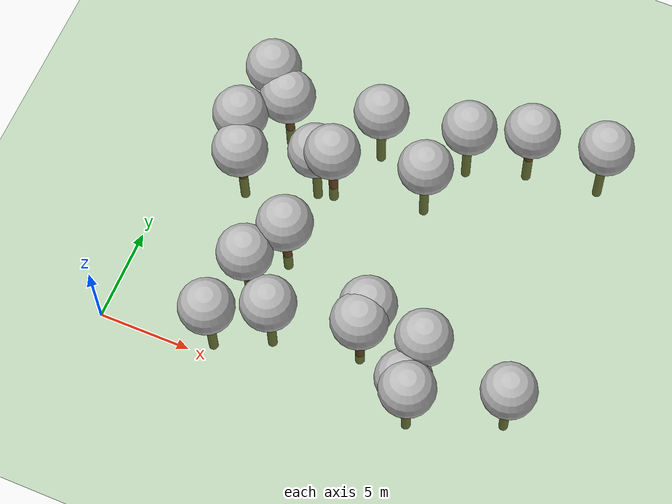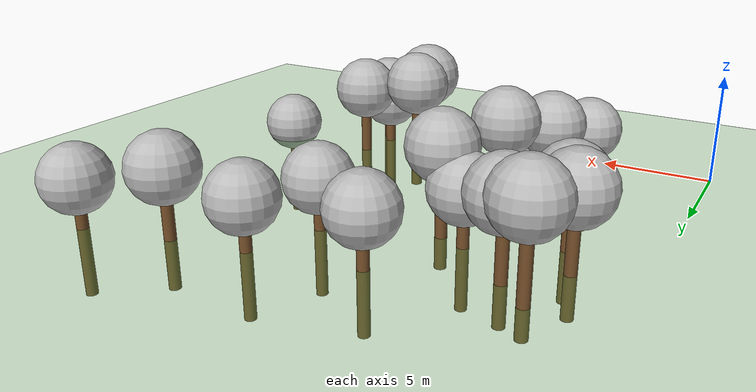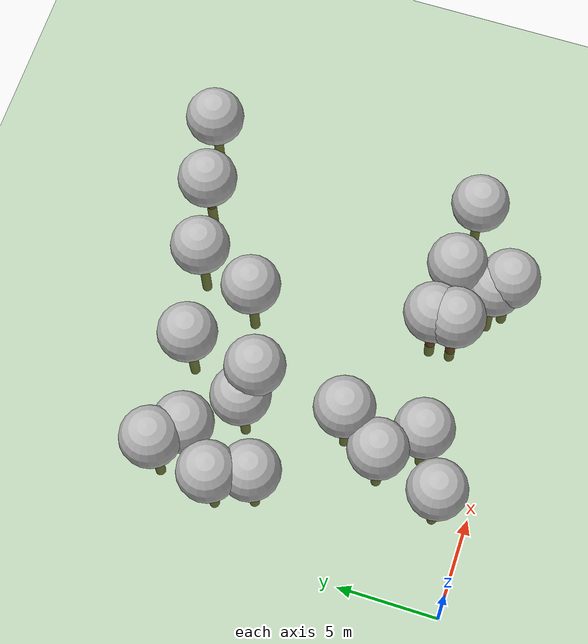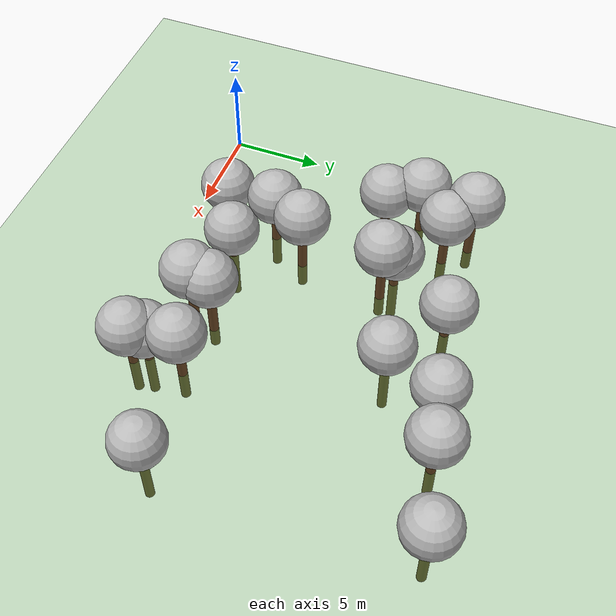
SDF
<sdf version="1.7">
 <world name="default">
  <model name="tree_simple495">
   <static>1</static>
   <link name="link">
    <pose>0 0 0.1 0 -0 0</pose>
    <collision name="collision_trunk">
     <pose>0 0 2 0 -0 0</pose>
     <geometry><cylinder><radius>0.25</radius><length>4</length></cylinder></geometry>
    </collision>
    <collision name="collision_treetop">
     <pose>0 0 5.2 0 -0 0</pose>
     <geometry><sphere><radius>1.5</radius></sphere></geometry>
    </collision>
    <visual name="trunk">
     <pose>0 0 2 0 -0 0</pose>
     <geometry><cylinder><radius>0.25</radius><length>4</length></cylinder></geometry>
     <material>
      <script>
       <uri>model://tree_simple/scripts</uri>
       <uri>model://tree_simple/materials/textures</uri>
       <name>TreeSimple/Trunk</name>
      </script>
     </material>
    </visual>
    <visual name="treetop">
     <pose>0 0 5.2 0 -0 0</pose>
     <geometry><sphere><radius>1.5</radius></sphere></geometry>
     <material>
      <script>
       <uri>model://tree_simple/scripts</uri>
       <uri>model://tree_simple/materials/textures</uri>
       <name>TreeSimple/Treetop</name>
      </script>
     </material>
    </visual>
   </link>
   <pose>13.2663 3.23501 -1.11258 0 -0 0</pose>
  </model>
  <model name="tree_simple486">
   <static>1</static>
   <link name="link">
    <pose>0 0 0.1 0 -0 0</pose>
    <collision name="collision_trunk">
     <pose>0 0 2 0 -0 0</pose>
     <geometry><cylinder><radius>0.25</radius><length>4</length></cylinder></geometry>
    </collision>
    <collision name="collision_treetop">
     <pose>0 0 5.2 0 -0 0</pose>
     <geometry><sphere><radius>1.5</radius></sphere></geometry>
    </collision>
    <visual name="trunk">
     <pose>0 0 2 0 -0 0</pose>
     <geometry><cylinder><radius>0.25</radius><length>4</length></cylinder></geometry>
     <material>
      <script>
       <uri>model://tree_simple/scripts</uri>
       <uri>model://tree_simple/materials/textures</uri>
       <name>TreeSimple/Trunk</name>
      </script>
     </material>
    </visual>
    <visual name="treetop">
     <pose>0 0 5.2 0 -0 0</pose>
     <geometry><sphere><radius>1.5</radius></sphere></geometry>
     <material>
      <script>
       <uri>model://tree_simple/scripts</uri>
       <uri>model://tree_simple/materials/textures</uri>
       <name>TreeSimple/Treetop</name>
      </script>
     </material>
    </visual>
   </link>
   <pose>8.18282 11.6524 -1.49404 0 -0 0</pose>
  </model>
  <model name="tree_simple431">
   <static>1</static>
   <link name="link">
    <pose>0 0 0.1 0 -0 0</pose>
    <collision name="collision_trunk">
     <pose>0 0 2 0 -0 0</pose>
     <geometry><cylinder><radius>0.25</radius><length>4</length></cylinder></geometry>
    </collision>
    <collision name="collision_treetop">
     <pose>0 0 5.2 0 -0 0</pose>
     <geometry><sphere><radius>1.5</radius></sphere></geometry>
    </collision>
    <visual name="trunk">
     <pose>0 0 2 0 -0 0</pose>
     <geometry><cylinder><radius>0.25</radius><length>4</length></cylinder></geometry>
     <material>
      <script>
       <uri>model://tree_simple/scripts</uri>
       <uri>model://tree_simple/materials/textures</uri>
       <name>TreeSimple/Trunk</name>
      </script>
     </material>
    </visual>
    <visual name="treetop">
     <pose>0 0 5.2 0 -0 0</pose>
     <geometry><sphere><radius>1.5</radius></sphere></geometry>
     <material>
      <script>
       <uri>model://tree_simple/scripts</uri>
       <uri>model://tree_simple/materials/textures</uri>
       <name>TreeSimple/Treetop</name>
      </script>
     </material>
    </visual>
   </link>
   <pose>21.2092 3.93897 -4.55692 0 -0 0</pose>
  </model>
  <model name="tree_simple421">
   <static>1</static>
   <link name="link">
    <pose>0 0 0.1 0 -0 0</pose>
    <collision name="collision_trunk">
     <pose>0 0 2 0 -0 0</pose>
     <geometry><cylinder><radius>0.25</radius><length>4</length></cylinder></geometry>
    </collision>
    <collision name="collision_treetop">
     <pose>0 0 5.2 0 -0 0</pose>
     <geometry><sphere><radius>1.5</radius></sphere></geometry>
    </collision>
    <visual name="trunk">
     <pose>0 0 2 0 -0 0</pose>
     <geometry><cylinder><radius>0.25</radius><length>4</length></cylinder></geometry>
     <material>
      <script>
       <uri>model://tree_simple/scripts</uri>
       <uri>model://tree_simple/materials/textures</uri>
       <name>TreeSimple/Trunk</name>
      </script>
     </material>
    </visual>
    <visual name="treetop">
     <pose>0 0 5.2 0 -0 0</pose>
     <geometry><sphere><radius>1.5</radius></sphere></geometry>
     <material>
      <script>
       <uri>model://tree_simple/scripts</uri>
       <uri>model://tree_simple/materials/textures</uri>
       <name>TreeSimple/Treetop</name>
      </script>
     </material>
    </visual>
   </link>
   <pose>7.02493 12.056 -2.87847 0 -0 0</pose>
  </model>
  <model name="tree_simple350">
   <static>1</static>
   <link name="link">
    <pose>0 0 0.1 0 -0 0</pose>
    <collision name="collision_trunk">
     <pose>0 0 2 0 -0 0</pose>
     <geometry><cylinder><radius>0.25</radius><length>4</length></cylinder></geometry>
    </collision>
    <collision name="collision_treetop">
     <pose>0 0 5.2 0 -0 0</pose>
     <geometry><sphere><radius>1.5</radius></sphere></geometry>
    </collision>
    <visual name="trunk">
     <pose>0 0 2 0 -0 0</pose>
     <geometry><cylinder><radius>0.25</radius><length>4</length></cylinder></geometry>
     <material>
      <script>
       <uri>model://tree_simple/scripts</uri>
       <uri>model://tree_simple/materials/textures</uri>
       <name>TreeSimple/Trunk</name>
      </script>
     </material>
    </visual>
    <visual name="treetop">
     <pose>0 0 5.2 0 -0 0</pose>
     <geometry><sphere><radius>1.5</radius></sphere></geometry>
     <material>
      <script>
       <uri>model://tree_simple/scripts</uri>
       <uri>model://tree_simple/materials/textures</uri>
       <name>TreeSimple/Treetop</name>
      </script>
     </material>
    </visual>
   </link>
   <pose>5.40258 1.73801 -3.09552 0 -0 0</pose>
  </model>
  <model name="tree_simple346">
   <static>1</static>
   <link name="link">
    <pose>0 0 0.1 0 -0 0</pose>
    <collision name="collision_trunk">
     <pose>0 0 2 0 -0 0</pose>
     <geometry><cylinder><radius>0.25</radius><length>4</length></cylinder></geometry>
    </collision>
    <collision name="collision_treetop">
     <pose>0 0 5.2 0 -0 0</pose>
     <geometry><sphere><radius>1.5</radius></sphere></geometry>
    </collision>
    <visual name="trunk">
     <pose>0 0 2 0 -0 0</pose>
     <geometry><cylinder><radius>0.25</radius><length>4</length></cylinder></geometry>
     <material>
      <script>
       <uri>model://tree_simple/scripts</uri>
       <uri>model://tree_simple/materials/textures</uri>
       <name>TreeSimple/Trunk</name>
      </script>
     </material>
    </visual>
    <visual name="treetop">
     <pose>0 0 5.2 0 -0 0</pose>
     <geometry><sphere><radius>1.5</radius></sphere></geometry>
     <material>
      <script>
       <uri>model://tree_simple/scripts</uri>
       <uri>model://tree_simple/materials/textures</uri>
       <name>TreeSimple/Treetop</name>
      </script>
     </material>
    </visual>
   </link>
   <pose>6.18559 4.9134 -2.15366 0 -0 0</pose>
  </model>
  <model name="tree_simple324">
   <static>1</static>
   <link name="link">
    <pose>0 0 0.1 0 -0 0</pose>
    <collision name="collision_trunk">
     <pose>0 0 2 0 -0 0</pose>
     <geometry><cylinder><radius>0.25</radius><length>4</length></cylinder></geometry>
    </collision>
    <collision name="collision_treetop">
     <pose>0 0 5.2 0 -0 0</pose>
     <geometry><sphere><radius>1.5</radius></sphere></geometry>
    </collision>
    <visual name="trunk">
     <pose>0 0 2 0 -0 0</pose>
     <geometry><cylinder><radius>0.25</radius><length>4</length></cylinder></geometry>
     <material>
      <script>
       <uri>model://tree_simple/scripts</uri>
       <uri>model://tree_simple/materials/textures</uri>
       <name>TreeSimple/Trunk</name>
      </script>
     </material>
    </visual>
    <visual name="treetop">
     <pose>0 0 5.2 0 -0 0</pose>
     <geometry><sphere><radius>1.5</radius></sphere></geometry>
     <material>
      <script>
       <uri>model://tree_simple/scripts</uri>
       <uri>model://tree_simple/materials/textures</uri>
       <name>TreeSimple/Treetop</name>
      </script>
     </material>
    </visual>
   </link>
   <pose>2.67974 12.1657 -1.97281 0 -0 0</pose>
  </model>
  <model name="tree_simple304">
   <static>1</static>
   <link name="link">
    <pose>0 0 0.1 0 -0 0</pose>
    <collision name="collision_trunk">
     <pose>0 0 2 0 -0 0</pose>
     <geometry><cylinder><radius>0.25</radius><length>4</length></cylinder></geometry>
    </collision>
    <collision name="collision_treetop">
     <pose>0 0 5.2 0 -0 0</pose>
     <geometry><sphere><radius>1.5</radius></sphere></geometry>
    </collision>
    <visual name="trunk">
     <pose>0 0 2 0 -0 0</pose>
     <geometry><cylinder><radius>0.25</radius><length>4</length></cylinder></geometry>
     <material>
      <script>
       <uri>model://tree_simple/scripts</uri>
       <uri>model://tree_simple/materials/textures</uri>
       <name>TreeSimple/Trunk</name>
      </script>
     </material>
    </visual>
    <visual name="treetop">
     <pose>0 0 5.2 0 -0 0</pose>
     <geometry><sphere><radius>1.5</radius></sphere></geometry>
     <material>
      <script>
       <uri>model://tree_simple/scripts</uri>
       <uri>model://tree_simple/materials/textures</uri>
       <name>TreeSimple/Treetop</name>
      </script>
     </material>
    </visual>
   </link>
   <pose>12.7492 13.4737 -3.09934 0 -0 0</pose>
  </model>
  <model name="tree_simple269">
   <static>1</static>
   <link name="link">
    <pose>0 0 0.1 0 -0 0</pose>
    <collision name="collision_trunk">
     <pose>0 0 2 0 -0 0</pose>
     <geometry><cylinder><radius>0.25</radius><length>4</length></cylinder></geometry>
    </collision>
    <collision name="collision_treetop">
     <pose>0 0 5.2 0 -0 0</pose>
     <geometry><sphere><radius>1.5</radius></sphere></geometry>
    </collision>
    <visual name="trunk">
     <pose>0 0 2 0 -0 0</pose>
     <geometry><cylinder><radius>0.25</radius><length>4</length></cylinder></geometry>
     <material>
      <script>
       <uri>model://tree_simple/scripts</uri>
       <uri>model://tree_simple/materials/textures</uri>
       <name>TreeSimple/Trunk</name>
      </script>
     </material>
    </visual>
    <visual name="treetop">
     <pose>0 0 5.2 0 -0 0</pose>
     <geometry><sphere><radius>1.5</radius></sphere></geometry>
     <material>
      <script>
       <uri>model://tree_simple/scripts</uri>
       <uri>model://tree_simple/materials/textures</uri>
       <name>TreeSimple/Treetop</name>
      </script>
     </material>
    </visual>
   </link>
   <pose>3.43166 10.3419 -2.36014 0 -0 0</pose>
  </model>
  <model name="tree_simple246">
   <static>1</static>
   <link name="link">
    <pose>0 0 0.1 0 -0 0</pose>
    <collision name="collision_trunk">
     <pose>0 0 2 0 -0 0</pose>
     <geometry><cylinder><radius>0.25</radius><length>4</length></cylinder></geometry>
    </collision>
    <collision name="collision_treetop">
     <pose>0 0 5.2 0 -0 0</pose>
     <geometry><sphere><radius>1.5</radius></sphere></geometry>
    </collision>
    <visual name="trunk">
     <pose>0 0 2 0 -0 0</pose>
     <geometry><cylinder><radius>0.25</radius><length>4</length></cylinder></geometry>
     <material>
      <script>
       <uri>model://tree_simple/scripts</uri>
       <uri>model://tree_simple/materials/textures</uri>
       <name>TreeSimple/Trunk</name>
      </script>
     </material>
    </visual>
    <visual name="treetop">
     <pose>0 0 5.2 0 -0 0</pose>
     <geometry><sphere><radius>1.5</radius></sphere></geometry>
     <material>
      <script>
       <uri>model://tree_simple/scripts</uri>
       <uri>model://tree_simple/materials/textures</uri>
       <name>TreeSimple/Treetop</name>
      </script>
     </material>
    </visual>
   </link>
   <pose>4.59531 14.0378 -1.90399 0 -0 0</pose>
  </model>
  <model name="tree_simple214">
   <static>1</static>
   <link name="link">
    <pose>0 0 0.1 0 -0 0</pose>
    <collision name="collision_trunk">
     <pose>0 0 2 0 -0 0</pose>
     <geometry><cylinder><radius>0.25</radius><length>4</length></cylinder></geometry>
    </collision>
    <collision name="collision_treetop">
     <pose>0 0 5.2 0 -0 0</pose>
     <geometry><sphere><radius>1.5</radius></sphere></geometry>
    </collision>
    <visual name="trunk">
     <pose>0 0 2 0 -0 0</pose>
     <geometry><cylinder><radius>0.25</radius><length>4</length></cylinder></geometry>
     <material>
      <script>
       <uri>model://tree_simple/scripts</uri>
       <uri>model://tree_simple/materials/textures</uri>
       <name>TreeSimple/Trunk</name>
      </script>
     </material>
    </visual>
    <visual name="treetop">
     <pose>0 0 5.2 0 -0 0</pose>
     <geometry><sphere><radius>1.5</radius></sphere></geometry>
     <material>
      <script>
       <uri>model://tree_simple/scripts</uri>
       <uri>model://tree_simple/materials/textures</uri>
       <name>TreeSimple/Treetop</name>
      </script>
     </material>
    </visual>
   </link>
   <pose>16.4619 3.98227 -2.03622 0 -0 0</pose>
  </model>
  <model name="tree_simple160">
   <static>1</static>
   <link name="link">
    <pose>0 0 0.1 0 -0 0</pose>
    <collision name="collision_trunk">
     <pose>0 0 2 0 -0 0</pose>
     <geometry><cylinder><radius>0.25</radius><length>4</length></cylinder></geometry>
    </collision>
    <collision name="collision_treetop">
     <pose>0 0 5.2 0 -0 0</pose>
     <geometry><sphere><radius>1.5</radius></sphere></geometry>
    </collision>
    <visual name="trunk">
     <pose>0 0 2 0 -0 0</pose>
     <geometry><cylinder><radius>0.25</radius><length>4</length></cylinder></geometry>
     <material>
      <script>
       <uri>model://tree_simple/scripts</uri>
       <uri>model://tree_simple/materials/textures</uri>
       <name>TreeSimple/Trunk</name>
      </script>
     </material>
    </visual>
    <visual name="treetop">
     <pose>0 0 5.2 0 -0 0</pose>
     <geometry><sphere><radius>1.5</radius></sphere></geometry>
     <material>
      <script>
       <uri>model://tree_simple/scripts</uri>
       <uri>model://tree_simple/materials/textures</uri>
       <name>TreeSimple/Treetop</name>
      </script>
     </material>
    </visual>
   </link>
   <pose>3.31258 15.1526 -1.40822 0 -0 0</pose>
  </model>
  <model name="tree_simple145">
   <static>1</static>
   <link name="link">
    <pose>0 0 0.1 0 -0 0</pose>
    <collision name="collision_trunk">
     <pose>0 0 2 0 -0 0</pose>
     <geometry><cylinder><radius>0.25</radius><length>4</length></cylinder></geometry>
    </collision>
    <collision name="collision_treetop">
     <pose>0 0 5.2 0 -0 0</pose>
     <geometry><sphere><radius>1.5</radius></sphere></geometry>
    </collision>
    <visual name="trunk">
     <pose>0 0 2 0 -0 0</pose>
     <geometry><cylinder><radius>0.25</radius><length>4</length></cylinder></geometry>
     <material>
      <script>
       <uri>model://tree_simple/scripts</uri>
       <uri>model://tree_simple/materials/textures</uri>
       <name>TreeSimple/Trunk</name>
      </script>
     </material>
    </visual>
    <visual name="treetop">
     <pose>0 0 5.2 0 -0 0</pose>
     <geometry><sphere><radius>1.5</radius></sphere></geometry>
     <material>
      <script>
       <uri>model://tree_simple/scripts</uri>
       <uri>model://tree_simple/materials/textures</uri>
       <name>TreeSimple/Treetop</name>
      </script>
     </material>
    </visual>
   </link>
   <pose>7.53257 6.98647 -1.64362 0 -0 0</pose>
  </model>
  <model name="tree_simple98">
   <static>1</static>
   <link name="link">
    <pose>0 0 0.1 0 -0 0</pose>
    <collision name="collision_trunk">
     <pose>0 0 2 0 -0 0</pose>
     <geometry><cylinder><radius>0.25</radius><length>4</length></cylinder></geometry>
    </collision>
    <collision name="collision_treetop">
     <pose>0 0 5.2 0 -0 0</pose>
     <geometry><sphere><radius>1.5</radius></sphere></geometry>
    </collision>
    <visual name="trunk">
     <pose>0 0 2 0 -0 0</pose>
     <geometry><cylinder><radius>0.25</radius><length>4</length></cylinder></geometry>
     <material>
      <script>
       <uri>model://tree_simple/scripts</uri>
       <uri>model://tree_simple/materials/textures</uri>
       <name>TreeSimple/Trunk</name>
      </script>
     </material>
    </visual>
    <visual name="treetop">
     <pose>0 0 5.2 0 -0 0</pose>
     <geometry><sphere><radius>1.5</radius></sphere></geometry>
     <material>
      <script>
       <uri>model://tree_simple/scripts</uri>
       <uri>model://tree_simple/materials/textures</uri>
       <name>TreeSimple/Treetop</name>
      </script>
     </material>
    </visual>
   </link>
   <pose>14.0247 16.57 -3.08498 0 -0 0</pose>
  </model>
  <model name="tree_simple85">
   <static>1</static>
   <link name="link">
    <pose>0 0 0.1 0 -0 0</pose>
    <collision name="collision_trunk">
     <pose>0 0 2 0 -0 0</pose>
     <geometry><cylinder><radius>0.25</radius><length>4</length></cylinder></geometry>
    </collision>
    <collision name="collision_treetop">
     <pose>0 0 5.2 0 -0 0</pose>
     <geometry><sphere><radius>1.5</radius></sphere></geometry>
    </collision>
    <visual name="trunk">
     <pose>0 0 2 0 -0 0</pose>
     <geometry><cylinder><radius>0.25</radius><length>4</length></cylinder></geometry>
     <material>
      <script>
       <uri>model://tree_simple/scripts</uri>
       <uri>model://tree_simple/materials/textures</uri>
       <name>TreeSimple/Trunk</name>
      </script>
     </material>
    </visual>
    <visual name="treetop">
     <pose>0 0 5.2 0 -0 0</pose>
     <geometry><sphere><radius>1.5</radius></sphere></geometry>
     <material>
      <script>
       <uri>model://tree_simple/scripts</uri>
       <uri>model://tree_simple/materials/textures</uri>
       <name>TreeSimple/Treetop</name>
      </script>
     </material>
    </visual>
   </link>
   <pose>9.34911 15.5834 -2.91532 0 -0 0</pose>
  </model>
  <model name="tree_simple84">
   <static>1</static>
   <link name="link">
    <pose>0 0 0.1 0 -0 0</pose>
    <collision name="collision_trunk">
     <pose>0 0 2 0 -0 0</pose>
     <geometry><cylinder><radius>0.25</radius><length>4</length></cylinder></geometry>
    </collision>
    <collision name="collision_treetop">
     <pose>0 0 5.2 0 -0 0</pose>
     <geometry><sphere><radius>1.5</radius></sphere></geometry>
    </collision>
    <visual name="trunk">
     <pose>0 0 2 0 -0 0</pose>
     <geometry><cylinder><radius>0.25</radius><length>4</length></cylinder></geometry>
     <material>
      <script>
       <uri>model://tree_simple/scripts</uri>
       <uri>model://tree_simple/materials/textures</uri>
       <name>TreeSimple/Trunk</name>
      </script>
     </material>
    </visual>
    <visual name="treetop">
     <pose>0 0 5.2 0 -0 0</pose>
     <geometry><sphere><radius>1.5</radius></sphere></geometry>
     <material>
      <script>
       <uri>model://tree_simple/scripts</uri>
       <uri>model://tree_simple/materials/textures</uri>
       <name>TreeSimple/Treetop</name>
      </script>
     </material>
    </visual>
   </link>
   <pose>17.2996 17.26 -2.29753 0 -0 0</pose>
  </model>
  <model name="tree_simple81">
   <static>1</static>
   <link name="link">
    <pose>0 0 0.1 0 -0 0</pose>
    <collision name="collision_trunk">
     <pose>0 0 2 0 -0 0</pose>
     <geometry><cylinder><radius>0.25</radius><length>4</length></cylinder></geometry>
    </collision>
    <collision name="collision_treetop">
     <pose>0 0 5.2 0 -0 0</pose>
     <geometry><sphere><radius>1.5</radius></sphere></geometry>
    </collision>
    <visual name="trunk">
     <pose>0 0 2 0 -0 0</pose>
     <geometry><cylinder><radius>0.25</radius><length>4</length></cylinder></geometry>
     <material>
      <script>
       <uri>model://tree_simple/scripts</uri>
       <uri>model://tree_simple/materials/textures</uri>
       <name>TreeSimple/Trunk</name>
      </script>
     </material>
    </visual>
    <visual name="treetop">
     <pose>0 0 5.2 0 -0 0</pose>
     <geometry><sphere><radius>1.5</radius></sphere></geometry>
     <material>
      <script>
       <uri>model://tree_simple/scripts</uri>
       <uri>model://tree_simple/materials/textures</uri>
       <name>TreeSimple/Treetop</name>
      </script>
     </material>
    </visual>
   </link>
   <pose>13.3023 4.2922 -1.32581 0 -0 0</pose>
  </model>
  <model name="tree_simple74">
   <static>1</static>
   <link name="link">
    <pose>0 0 0.1 0 -0 0</pose>
    <collision name="collision_trunk">
     <pose>0 0 2 0 -0 0</pose>
     <geometry><cylinder><radius>0.25</radius><length>4</length></cylinder></geometry>
    </collision>
    <collision name="collision_treetop">
     <pose>0 0 5.2 0 -0 0</pose>
     <geometry><sphere><radius>1.5</radius></sphere></geometry>
    </collision>
    <visual name="trunk">
     <pose>0 0 2 0 -0 0</pose>
     <geometry><cylinder><radius>0.25</radius><length>4</length></cylinder></geometry>
     <material>
      <script>
       <uri>model://tree_simple/scripts</uri>
       <uri>model://tree_simple/materials/textures</uri>
       <name>TreeSimple/Trunk</name>
      </script>
     </material>
    </visual>
    <visual name="treetop">
     <pose>0 0 5.2 0 -0 0</pose>
     <geometry><sphere><radius>1.5</radius></sphere></geometry>
     <material>
      <script>
       <uri>model://tree_simple/scripts</uri>
       <uri>model://tree_simple/materials/textures</uri>
       <name>TreeSimple/Treetop</name>
      </script>
     </material>
    </visual>
   </link>
   <pose>16.1885 1.95366 -2.975 0 -0 0</pose>
  </model>
  <model name="tree_simple66">
   <static>1</static>
   <link name="link">
    <pose>0 0 0.1 0 -0 0</pose>
    <collision name="collision_trunk">
     <pose>0 0 2 0 -0 0</pose>
     <geometry><cylinder><radius>0.25</radius><length>4</length></cylinder></geometry>
    </collision>
    <collision name="collision_treetop">
     <pose>0 0 5.2 0 -0 0</pose>
     <geometry><sphere><radius>1.5</radius></sphere></geometry>
    </collision>
    <visual name="trunk">
     <pose>0 0 2 0 -0 0</pose>
     <geometry><cylinder><radius>0.25</radius><length>4</length></cylinder></geometry>
     <material>
      <script>
       <uri>model://tree_simple/scripts</uri>
       <uri>model://tree_simple/materials/textures</uri>
       <name>TreeSimple/Trunk</name>
      </script>
     </material>
    </visual>
    <visual name="treetop">
     <pose>0 0 5.2 0 -0 0</pose>
     <geometry><sphere><radius>1.5</radius></sphere></geometry>
     <material>
      <script>
       <uri>model://tree_simple/scripts</uri>
       <uri>model://tree_simple/materials/textures</uri>
       <name>TreeSimple/Treetop</name>
      </script>
     </material>
    </visual>
   </link>
   <pose>8.20454 3.17714 -3.2936 0 -0 0</pose>
  </model>
  <model name="tree_simple48">
   <static>1</static>
   <link name="link">
    <pose>0 0 0.1 0 -0 0</pose>
    <collision name="collision_trunk">
     <pose>0 0 2 0 -0 0</pose>
     <geometry><cylinder><radius>0.25</radius><length>4</length></cylinder></geometry>
    </collision>
    <collision name="collision_treetop">
     <pose>0 0 5.2 0 -0 0</pose>
     <geometry><sphere><radius>1.5</radius></sphere></geometry>
    </collision>
    <visual name="trunk">
     <pose>0 0 2 0 -0 0</pose>
     <geometry><cylinder><radius>0.25</radius><length>4</length></cylinder></geometry>
     <material>
      <script>
       <uri>model://tree_simple/scripts</uri>
       <uri>model://tree_simple/materials/textures</uri>
       <name>TreeSimple/Trunk</name>
      </script>
     </material>
    </visual>
    <visual name="treetop">
     <pose>0 0 5.2 0 -0 0</pose>
     <geometry><sphere><radius>1.5</radius></sphere></geometry>
     <material>
      <script>
       <uri>model://tree_simple/scripts</uri>
       <uri>model://tree_simple/materials/textures</uri>
       <name>TreeSimple/Treetop</name>
      </script>
     </material>
    </visual>
   </link>
   <pose>16.6507 1.30699 -2.50801 0 -0 0</pose>
  </model>
  <model name="tree_simple20">
   <static>1</static>
   <link name="link">
    <pose>0 0 0.1 0 -0 0</pose>
    <collision name="collision_trunk">
     <pose>0 0 2 0 -0 0</pose>
     <geometry><cylinder><radius>0.25</radius><length>4</length></cylinder></geometry>
    </collision>
    <collision name="collision_treetop">
     <pose>0 0 5.2 0 -0 0</pose>
     <geometry><sphere><radius>1.5</radius></sphere></geometry>
    </collision>
    <visual name="trunk">
     <pose>0 0 2 0 -0 0</pose>
     <geometry><cylinder><radius>0.25</radius><length>4</length></cylinder></geometry>
     <material>
      <script>
       <uri>model://tree_simple/scripts</uri>
       <uri>model://tree_simple/materials/textures</uri>
       <name>TreeSimple/Trunk</name>
      </script>
     </material>
    </visual>
    <visual name="treetop">
     <pose>0 0 5.2 0 -0 0</pose>
     <geometry><sphere><radius>1.5</radius></sphere></geometry>
     <material>
      <script>
       <uri>model://tree_simple/scripts</uri>
       <uri>model://tree_simple/materials/textures</uri>
       <name>TreeSimple/Treetop</name>
      </script>
     </material>
    </visual>
   </link>
   <pose>21.1901 18.2619 -3.16788 0 -0 0</pose>
  </model>
  <model name="ground_plane">
   <static>1</static>
   <link name="link">
    <collision name="collision">
     <geometry><plane><normal>0 0 1</normal><size>250 250</size></plane></geometry>
     <surface><friction><ode><mu>1</mu><mu2>1</mu2></ode></friction></surface>
    </collision>
    <visual name="grass">
     <cast_shadows>0</cast_shadows>
     <geometry><plane><normal>0 0 1</normal><size>150 250</size></plane></geometry>
     <material>
      <script><uri>file://media/materials/scripts/Gazebo.material</uri><name>Gazebo/Grass</name></script>
     </material>
    </visual>
   </link>
  </model>
 </world>
</sdf>
